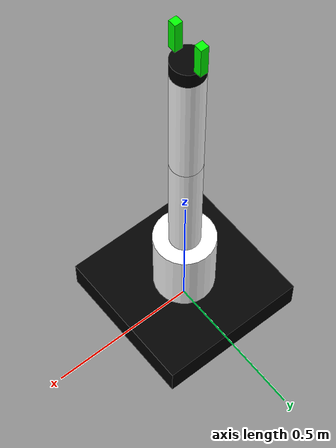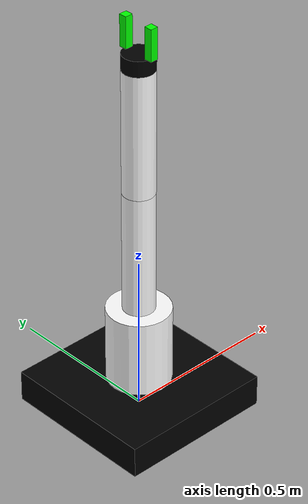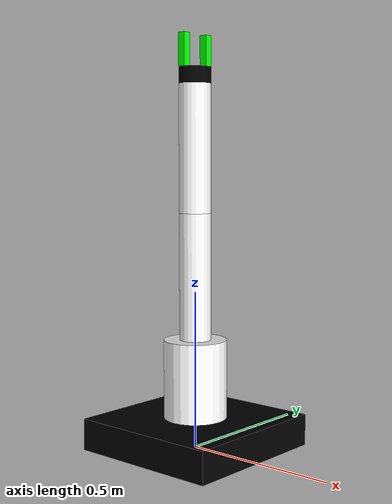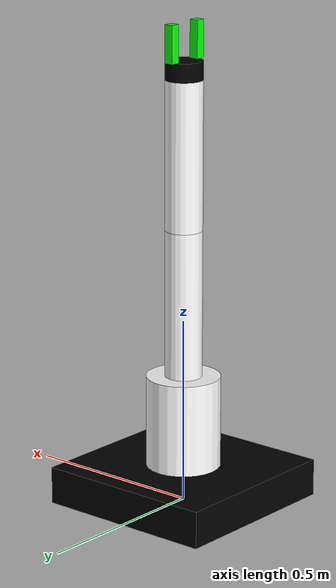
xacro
<?xml version="1.0"?>
<robot name="chipsy_arm" xmlns:xacro="http://ros.org/wiki/xacro">

  <!-- GENERIC PROPERTIES USED IN THE ARM -->
  <!-- BASE -->
  <!-- along x axis -->
  <xacro:property name="base_length" value="0.5"/>
  <!-- along y axis -->
  <xacro:property name="base_width" value="0.5"/>
  <!-- along z axis -->
  <xacro:property name="base_height" value="0.1"/>
  <xacro:property name="base_mass" value="10"/>

  <!-- COLUMN -->
  <!-- along z axis -->
  <xacro:property name="column_length" value="0.25"/>
  <xacro:property name="column_dia" value="0.2"/>
  <xacro:property name="column_mass" value="2"/>

  <!-- UPPER ARM -->
  <!-- along z axis -->
  <xacro:property name="upper_arm_length" value="0.4"/>
  <xacro:property name="upper_arm_dia" value="0.1"/>
  <xacro:property name="upper_arm_mass" value="0.5"/>

  <!-- LOWER ARM -->
  <!-- along z axis -->
  <xacro:property name="lower_arm_length" value="0.4"/>
  <xacro:property name="lower_arm_dia" value="0.1"/>
  <xacro:property name="lower_arm_mass" value="0.5"/>

  <!-- WRIST ROLL LINK -->
  <!-- along z axis -->
  <xacro:property name="wrist_roll_length" value="0.05"/>
  <xacro:property name="wrist_roll_dia" value="0.1"/>
  <xacro:property name="wrist_roll_mass" value="0.1"/>

  <!-- END EFFECTOR -->
  <!-- along z axis -->
  <xacro:property name="eef_length" value="0.1"/>
  <xacro:property name="eef_width" value="0.025"/>
  <xacro:property name="eef_mass" value="0.025"/>

  <xacro:property name="PI" value="3.141592653589793238"/>

  <!-- COLOURS FOR MATERIAL -->
  <material name="white">
    <color rgba="1 1 1 1"/>
  </material>

  <material name="black">
    <color rgba ="0 0 0 1"/>
  </material>

  <material name="green">
    <color rgba="0 1 0 1"/>
  </material>

  <!-- INERTIAL MACRO FOR ALL COMPONENTS -->
  <xacro:macro name="base_inertial" params="mass distance">
      <inertial>
        <origin xyz="0 0 ${distance}" rpy="0 0 0"/>
      	<mass value="${mass}" />
        <inertia ixx="${0.1*mass}" ixy="0.0" ixz="0.0" iyy="${0.05*mass}" iyz="0.0" izz="${0.1*mass}" />
      </inertial>
   </xacro:macro>

  <!-- DUMMY ROOT LINK SO THAT BASE LINK CAN BE GIVEN SOME MASS -->
  <link name="root_link"/>

  <!-- FIXING ROBOT TO THE WORLD' -->
  <link name="world"/>

  <joint name="fixed" type="fixed">
    <parent link="world"/>
    <child link="root_link"/>
  </joint>

  <!-- BASE LINK IS THE LINK WHICH EVERYTHING IS ATTACHED TO -->
  <link name="base_link">
    <visual>
      <origin xyz="0 0 ${base_height/2}" rpy="0 0 0"/>
      <geometry>
        <box size="${base_length} ${base_width} ${base_height}"/>
      </geometry>
      <material name="black"/>
    </visual>

    <collision>
      <origin xyz="0 0 ${base_height/2}" rpy="0 0 0"/>
      <geometry>
        <box size="${base_length} ${base_width} ${base_height}"/>
      </geometry>
    </collision>

    <xacro:base_inertial mass="${base_mass}" distance="${base_height/2}"/>
  </link>

  <joint name="base_to_root_joint" type="fixed">
    <parent link="root_link"/>
    <child link="base_link"/>
  </joint>

  <!-- COLUMN LINK IS A STANDING COLUMN THAT ROTATES ABOUT VERTICAL AXIS -->
  <link name="column_link">
    <visual>
      <origin xyz="0 0 ${column_length/2}" rpy="0 0 0"/>
      <geometry>
        <cylinder radius="${column_dia/2}" length="${column_length}"/>
      </geometry>
      <material name="white"/>
    </visual>

    <collision>
      <origin xyz="0 0 ${column_length/2}" rpy="0 0 0"/>
      <geometry>
        <cylinder radius="${column_dia/2}" length="${column_length}"/>
      </geometry>
    </collision>

    <xacro:base_inertial mass="${column_mass}" distance="${column_length/2}"/>
  </link>

  <joint name="column_to_base_joint" type="revolute">
    <origin xyz="0 0 ${base_height}" rpy="0 0 0"/>
    <limit upper="${PI}" lower="${-1*PI}" effort="400" velocity="10"/>
    <axis xyz="0 0 1" rpy="0 0 0"/>
    <parent link="base_link"/>
    <child link="column_link"/>
  </joint>

  <transmission name="column_to_base_transmission">
    <type>transmission_interface/SimpleTransmission</type>
    <joint name="column_to_base_joint">
      <hardwareInterface>hardware_interface/EffortJointInterface</hardwareInterface>
    </joint>
    <actuator name="column_to_base_actuator"/>
  </transmission>

  <!-- UPPER ARM LINK -->
  <link name="upper_arm_link">
    <visual>
      <origin xyz="0 0 ${upper_arm_length/2}" rpy="0 0 0"/>
      <geometry>
        <cylinder radius="${upper_arm_dia/2}" length="${upper_arm_length}"/>
      </geometry>
      <material name="white"/>
    </visual>

    <collision>
      <origin xyz="0 0 ${upper_arm_length/2}" rpy="0 0 0"/>
      <geometry>
        <cylinder radius="${upper_arm_dia/2}" length="${upper_arm_length}"/>
      </geometry>
    </collision>

    <xacro:base_inertial mass="${upper_arm_mass}" distance="${upper_arm_length/2}"/>
  </link>

  <joint name="upper_arm_to_column_joint" type="revolute">
    <origin xyz="0 0 ${column_length}" rpy="0 0 0"/>
    <limit upper="${PI}" lower="0" effort="100" velocity="1"/>
    <axis xyz="0 1 0" rpy="0 0 0"/>
    <parent link="column_link"/>
    <child link="upper_arm_link"/>
  </joint>

  <transmission name="upper_arm_to_column_transmission">
    <type>transmission_interface/SimpleTransmission</type>
    <joint name="upper_arm_to_column_joint">
      <hardwareInterface>hardware_interface/EffortJointInterface</hardwareInterface>
    </joint>
    <actuator name="upper_arm_to_column_actuator"/>
  </transmission>

  <!-- LOWER ARM LINK -->
  <link name="lower_arm_link">
    <visual>
      <origin xyz="0 0 ${lower_arm_length/2}" rpy="0 0 0"/>
      <geometry>
        <cylinder radius="${lower_arm_dia/2}" length="${lower_arm_length}"/>
      </geometry>
      <material name="white"/>
    </visual>

    <collision>
      <origin xyz="0 0 ${lower_arm_length/2}" rpy="0 0 0"/>
      <geometry>
        <cylinder radius="${lower_arm_dia/2}" length="${lower_arm_length}"/>
      </geometry>
    </collision>

    <xacro:base_inertial mass="${lower_arm_mass}" distance="${lower_arm_length/2}"/>
  </link>

  <joint name="lower_arm_to_upper_arm_joint" type="revolute">
    <origin xyz="0 0 ${upper_arm_length}" rpy="0 0 0"/>
    <limit upper="${PI}" lower="0" effort="100" velocity="1"/>
    <axis xyz="0 1 0" rpy="0 0 0"/>
    <parent link="upper_arm_link"/>
    <child link="lower_arm_link"/>
  </joint>

  <transmission name="lower_arm_to_upper_arm_transmission">
    <type>transmission_interface/SimpleTransmission</type>
    <joint name="lower_arm_to_upper_arm_joint">
      <hardwareInterface>hardware_interface/EffortJointInterface</hardwareInterface>
    </joint>
    <actuator name="lower_arm_to_upper_arm_actuator"/>
  </transmission>

  <!-- WRIST ROLL LINK -->
  <link name="wrist_roll_link">
    <visual>
      <origin xyz="0 0 ${wrist_roll_length/2}" rpy="0 0 0"/>
      <geometry>
        <cylinder radius="${wrist_roll_dia/2}" length="${wrist_roll_length}"/>
      </geometry>
      <material name="black"/>
    </visual>

    <collision>
      <origin xyz="0 0 ${wrist_roll_length/2}" rpy="0 0 0"/>
      <geometry>
        <cylinder radius="${wrist_roll_dia/2}" length="${wrist_roll_length}"/>
      </geometry>
    </collision>

    <xacro:base_inertial mass="${wrist_roll_mass}" distance="${wrist_roll_length/2}"/>
  </link>

  <joint name="wrist_roll_to_lower_arm_joint" type="revolute">
    <origin xyz="0 0 ${lower_arm_length}" rpy="0 0 0"/>
    <limit upper="${PI}" lower="${-1*PI}" effort="20" velocity="1"/>
    <axis xyz="0 0 1" rpy="0 0 0"/>
    <parent link="lower_arm_link"/>
    <child link="wrist_roll_link"/>
  </joint>

  <transmission name="wrist_roll_to_lower_arm_transmission">
    <type>transmission_interface/SimpleTransmission</type>
    <joint name="wrist_roll_to_lower_arm_joint">
      <hardwareInterface>hardware_interface/EffortJointInterface</hardwareInterface>
    </joint>
    <actuator name="wrist_roll_to_lower_arm_actuator"/>
  </transmission>

  <gazebo reference="wrist_roll_link">
    <material>Gazebo/Red</material>
  </gazebo>

  <!-- RIGHT END EFFECTOR -->
  <link name="right_eef_link">
    <visual>
      <origin xyz="0 0 ${eef_length/2}" rpy="0 0 0"/>
      <geometry>
        <box size="${eef_width} ${eef_width} ${eef_length}"/>
      </geometry>
      <material name="green"/>
    </visual>

    <collision>
      <origin xyz="0 0 ${eef_length/2}" rpy="0 0 0"/>
      <geometry>
        <box size="${eef_width} ${eef_width} ${eef_length}"/>
      </geometry>
    </collision>

    <xacro:base_inertial mass="${eef_mass}" distance="${eef_length/2}"/>
  </link>

  <joint name="right_eef_to_wrist_roll_joint" type="prismatic">
    <origin xyz="0 ${wrist_roll_dia/2} ${wrist_roll_length}" rpy="0 0 0"/>
    <limit upper="${wrist_roll_dia/2-eef_width/2}" lower="${-wrist_roll_dia/2+eef_width/2}" effort="50" velocity="0.05"/>
    <axis xyz="0 1 0" rpy="0 0 0"/>
    <parent link="wrist_roll_link"/>
    <child link="right_eef_link"/>
  </joint>

  <transmission name="right_eef_to_wrist_roll_transmission">
    <type>transmission_interface/SimpleTransmission</type>
    <joint name="right_eef_to_wrist_roll_joint">
      <hardwareInterface>hardware_interface/EffortJointInterface</hardwareInterface>
    </joint>
    <actuator name="right_eef_to_wrist_roll_actuator"/>
  </transmission>

  <!-- LEFT END EFFECTOR -->
  <link name="left_eef_link">
    <visual>
      <origin xyz="0 0 ${eef_length/2}" rpy="0 0 0"/>
      <geometry>
        <box size="${eef_width} ${eef_width} ${eef_length}"/>
      </geometry>
      <material name="green"/>
    </visual>

    <collision>
      <origin xyz="0 0 ${eef_length/2}" rpy="0 0 0"/>
      <geometry>
        <box size="${eef_width} ${eef_width} ${eef_length}"/>
      </geometry>
    </collision>

    <xacro:base_inertial mass="${eef_mass}" distance="${eef_length/2}"/>
  </link>

  <joint name="left_eef_to_wrist_roll_joint" type="prismatic">
    <origin xyz="0 ${-wrist_roll_dia/2} ${wrist_roll_length}" rpy="0 0 0"/>
    <limit upper="${wrist_roll_dia/2-eef_width/2}" lower="${-wrist_roll_dia/2+eef_width/2}" effort="50" velocity="0.05"/>
    <axis xyz="0 1 0" rpy="0 0 0"/>
    <parent link="wrist_roll_link"/>
    <child link="left_eef_link"/>
  </joint>

  <transmission name="left_eef_to_wrist_roll_transmission">
    <type>transmission_interface/SimpleTransmission</type>
    <joint name="left_eef_to_wrist_roll_joint">
      <hardwareInterface>hardware_interface/EffortJointInterface</hardwareInterface>
    </joint>
    <actuator name="left_eef_to_wrist_roll_actuator"/>
  </transmission>

  <!-- ROS CONTROL PLUGIN -->
  <gazebo>
    <plugin name="gazebo_ros_control" filename="libgazebo_ros_control.so"/>
  </gazebo>

  <!-- JOINT STATE PUBLISHER -->
  <gazebo>
    <plugin name="joint_state_publisher" filename="libgazebo_ros_joint_state_publisher.so">
      <jointName>column_to_base_joint,upper_arm_to_column_joint,
      lower_arm_to_upper_arm_joint, wrist_roll_to_lower_arm_joint,
      right_eef_to_wrist_roll_joint, left_eef_to_wrist_roll_joint</jointName>
    </plugin>
  </gazebo>

</robot>
